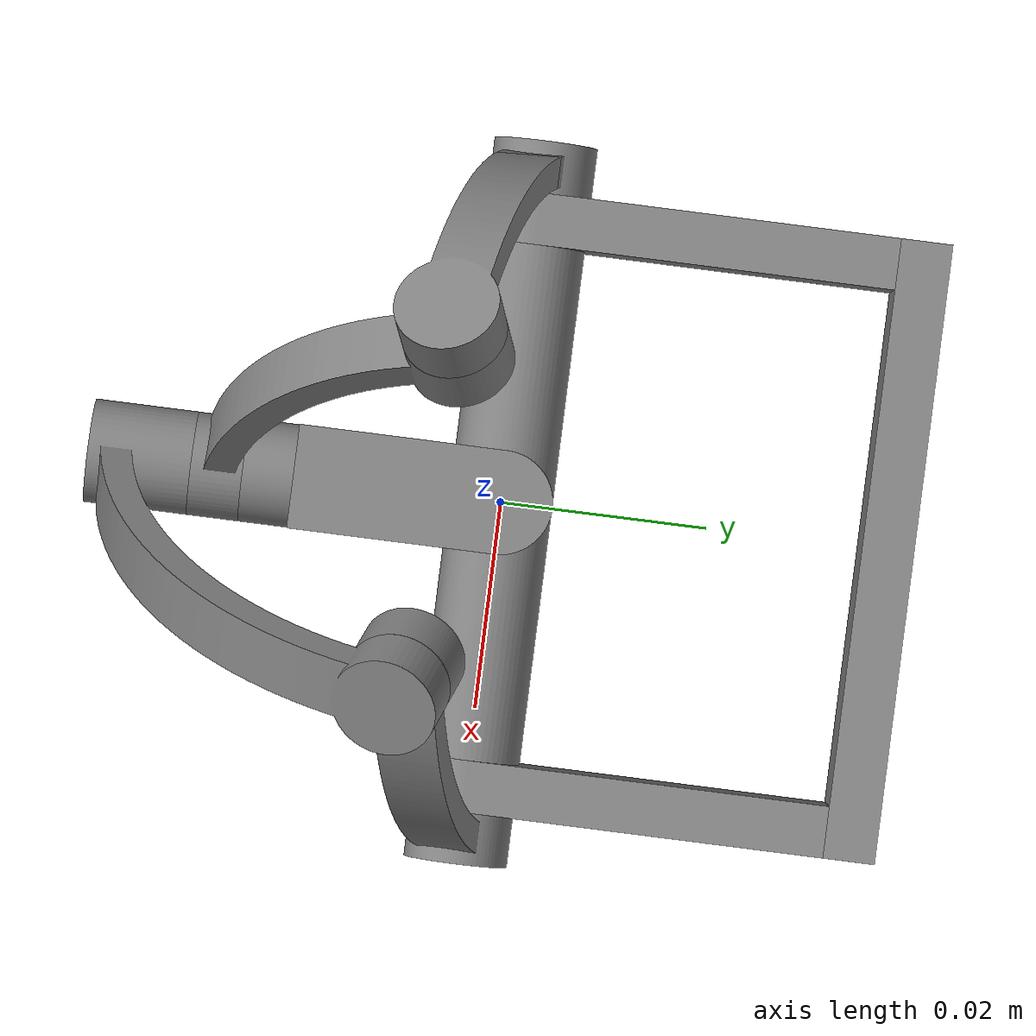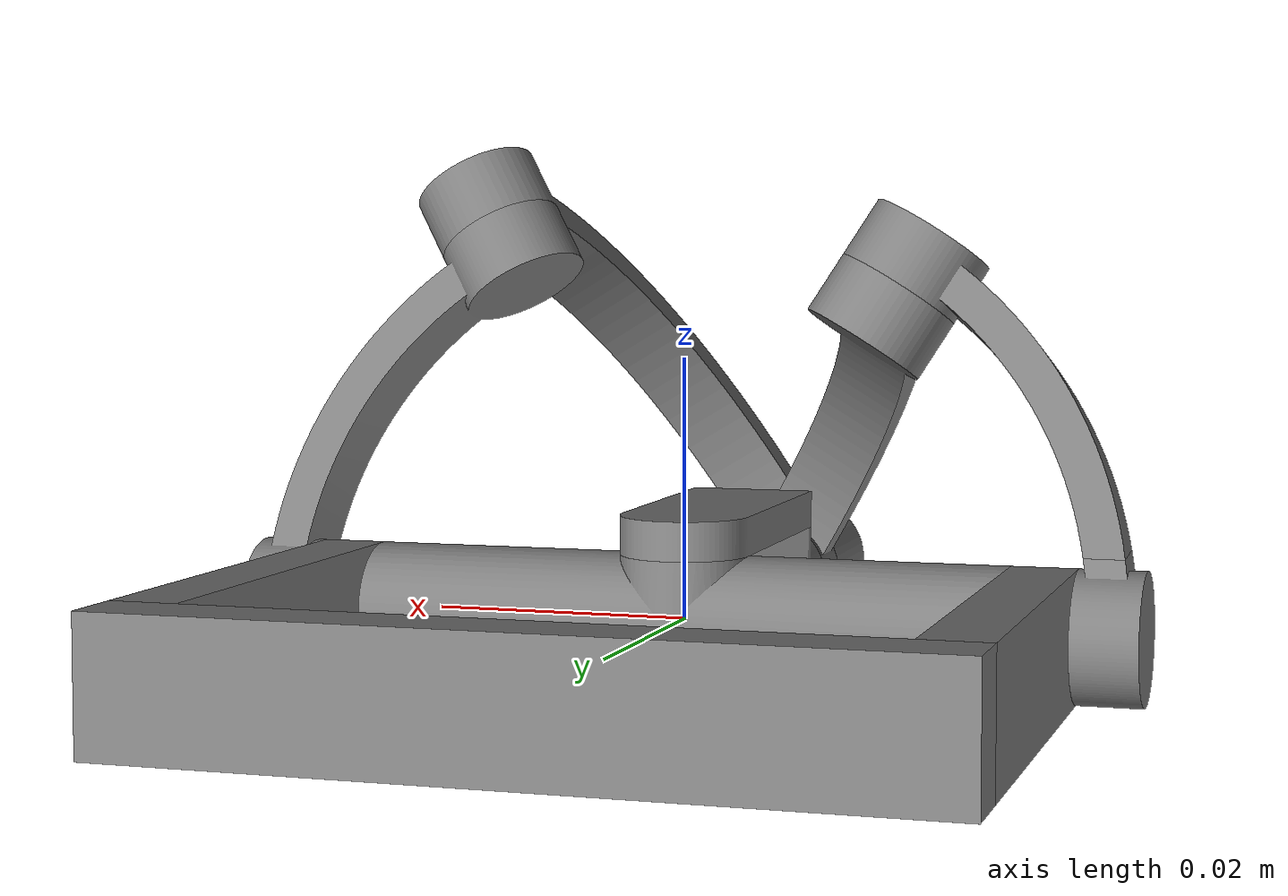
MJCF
<mujoco model="5bar">
  <option gravity="0 0 -9.81">
      <flag contact="disable"/>
  </option>
  <actuator>
    <position name="j_a" joint="j_a" kp="0.001" kv="0.001" ctrlrange="-3.14 3.14"/>
    <position name="j_b" joint="j_b" kp="0.001" kv="0.001" ctrlrange="-3.14 3.14"/>
  </actuator>
  <compiler angle="radian"/>

  <asset>
    <mesh name="base_link" file="base_link.stl" scale="0.001 0.001 0.001"/>
    <mesh name="base_21" file="base_21.stl" scale="0.001 0.001 0.001"/>
    <mesh name="base_11" file="base_11.stl" scale="0.001 0.001 0.001"/>
    <mesh name="cross1" file="cross1.stl" scale="0.001 0.001 0.001"/>
    <mesh name="lb_11" file="lb_11.stl" scale="0.001 0.001 0.001"/>
    <mesh name="front_21" file="front_21.stl" scale="0.001 0.001 0.001"/>
    <mesh name="front1" file="front1.stl" scale="0.001 0.001 0.001"/>
    <mesh name="front_31" file="front_31.stl" scale="0.001 0.001 0.001"/>
    <mesh name="la_31" file="la_31.stl" scale="0.001 0.001 0.001"/>
    <mesh name="la_11" file="la_11.stl" scale="0.001 0.001 0.001"/>
    <mesh name="lb_21" file="lb_21.stl" scale="0.001 0.001 0.001"/>
    <mesh name="la_21" file="la_21.stl" scale="0.001 0.001 0.001"/>
  </asset>

  <worldbody>
    <geom type="mesh" mesh="base_link"/>
    <geom type="mesh" mesh="base_21"/>
    <geom type="mesh" mesh="base_11"/>
    <body name="lb_11" pos="0.03 0 0">
      <inertial pos="-0.00444611 -0.00353308 0.0142476" quat="0.700295 -0.09808 -0.263756 0.656049" mass="0.00129991" diaginertia="2.52345e-07 2.51999e-07 1.36177e-08"/>
      <joint name="j_b" pos="0 0 0" axis="1 0 0"/>
      <geom pos="-0.03 0 0" quat="1 0 0 0" type="mesh" mesh="lb_11"/>
    </body>
    <body name="cross1" pos="-0.025 0 0">
      <inertial pos="0.025 0 0" quat="0.5 0.5 0.5 0.5" mass="0.00428847" diaginertia="8.95946e-07 8.95389e-07 5.59291e-08"/>
      <joint name="Revolute_3" pos="0 0 0" axis="1 0 0"/>
      <geom pos="0.025 0 0" quat="1 0 0 0" type="mesh" mesh="cross1"/>
      <body name="front_21" pos="0.025 0 0.005">
        <inertial pos="-1.03126e-11 -0.0121914 -0.005" quat="0.707107 0.707107 0 0" mass="0.00229395" diaginertia="2.28944e-07 1.74565e-07 8.76278e-08"/>
        <joint name="Revolute_5" pos="0 0 0" axis="0 0 1"/>
        <geom pos="0 0 -0.005" quat="1 0 0 0" type="mesh" mesh="front_21"/>
        <geom pos="0 0 -0.005" type="mesh" mesh="front1"/>
        <geom pos="0 0 -0.005" quat="1 0 0 0" type="mesh" mesh="front_31"/>
        <body name="la_21" pos="0 -0.025 -0.005">
          <inertial pos="-0.0075591 0.00687576 0.0125804" quat="0.908364 -0.321683 -0.251889 -0.0891458" mass="0.0013673" diaginertia="2.98766e-07 2.93464e-07 1.89781e-08"/>
          <joint name="Revolute_14" pos="0 0 0" axis="0 -1 0"/>
          <geom pos="0 0.025 0" type="mesh" mesh="la_21"/>
        </body>
          <body name="lb_21" pos="0 -0.03 -0.005">
            <inertial pos="0.00833889 0.00338646 0.0138782" quat="0.919279 -0.28898 0.254939 0.0801414" mass="0.00204372" diaginertia="7.57484e-07 7.30188e-07 4.77358e-08"/>
            <joint name="Revolute_13" pos="0 0 0" axis="0 -1 0"/>
            <geom pos="0 0.03 0" type="mesh" mesh="lb_21"/>
          </body>
      </body>
    </body>
    <body name="la_31" pos="-0.03 0 0">
      <inertial pos="0.0044461 -0.00353308 0.0142476" quat="0.656101 0.263748 0.0980998 0.700246" mass="0.00129991" diaginertia="2.52346e-07 2.51999e-07 1.36177e-08"/>
      <joint name="j_a" pos="0 0 0" axis="-1 0 0"/>
      <geom pos="0.03 0 0" type="mesh" mesh="la_31"/>
      <geom pos="0.03 0 0" type="mesh" mesh="la_11"/>
    </body>
  </worldbody>
  <equality>
      <connect body1="la_21" body2="la_31" anchor="-0.020151 0.016816 0.033537" active="true" />
      <connect body1="lb_21" body2="lb_11" anchor="0.020151 0.021816 0.033537" active="true" />
  </equality>
</mujoco>
